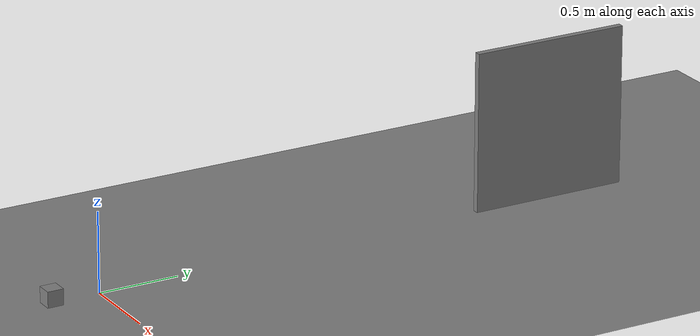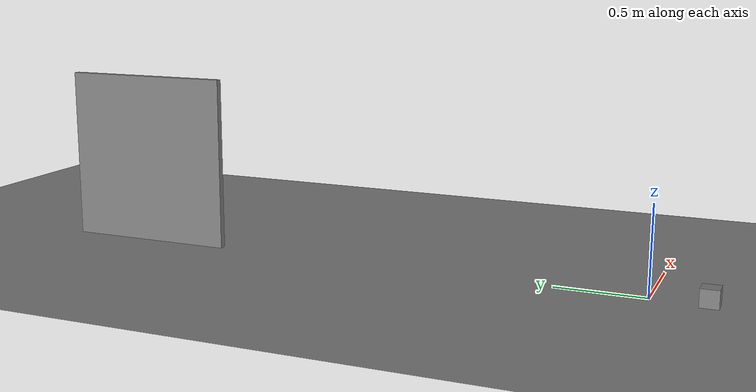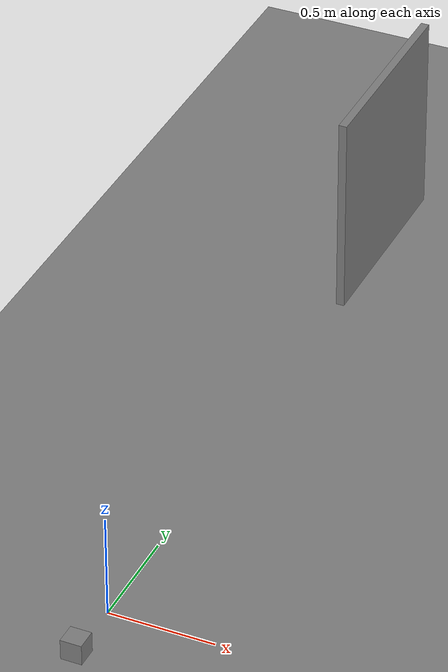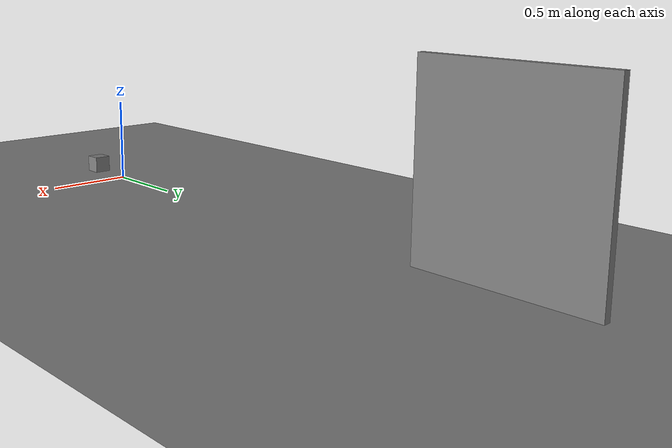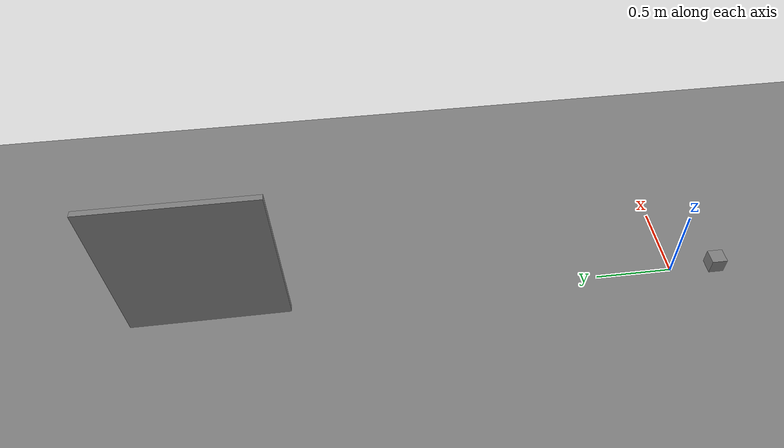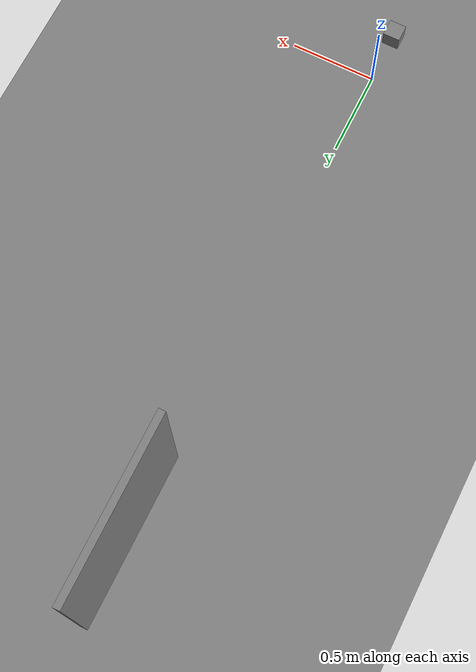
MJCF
<mujoco model="sequence_penetration_fixed">
  <option timestep="0.002"/>
  <worldbody>
    <geom name="floor" type="plane" size="5 5 0.1"/>
    <geom name="wall" type="box" size="0.02 0.5 0.5" pos="0 3.0 0.5" contype="1" conaffinity="1"/>
    <body name="cart" pos="0 -0.3 0.05">
      <joint name="drive" type="slide" axis="0 1 0" range="-1 1"/>
      <geom name="cart_geom" type="box" size="0.05 0.05 0.05" mass="1.0"/>
    </body>
  </worldbody>
  <actuator>
    <motor name="drive_motor" joint="drive" gear="80" ctrlrange="-1 1"/>
  </actuator>
</mujoco>
